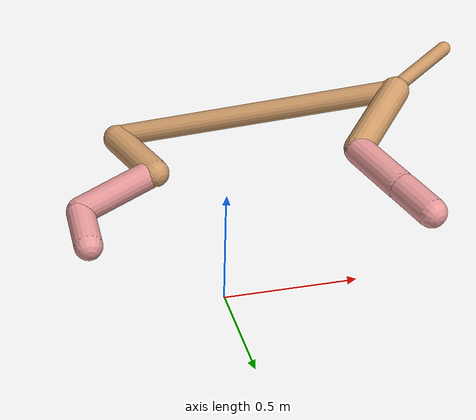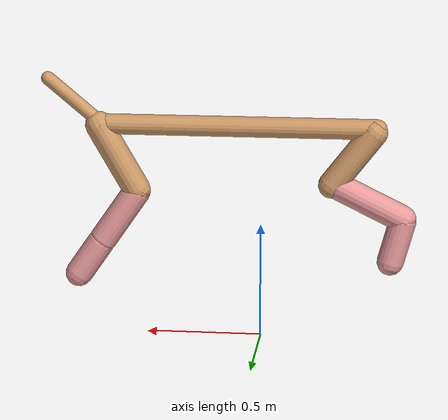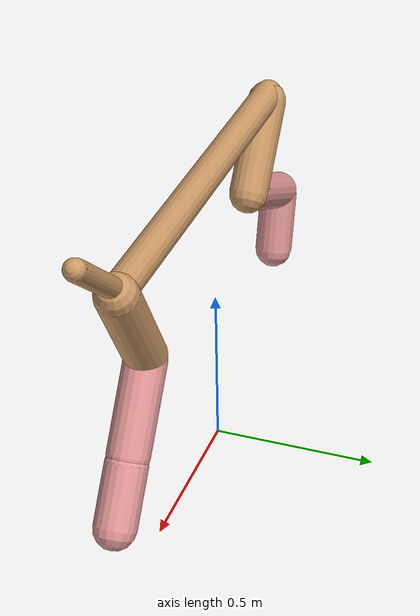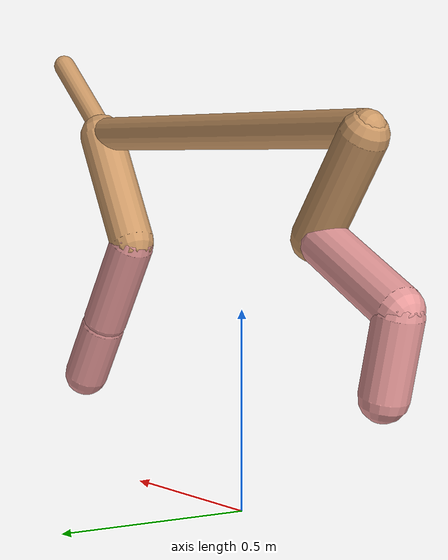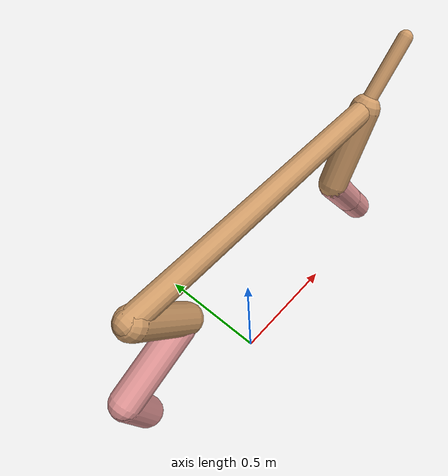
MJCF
<mujoco model="cheetah">
  <compiler angle="radian" coordinate="local" inertiafromgeom="true" settotalmass="14" />
  <default>
    <joint armature=".1" damping=".01" limited="true" solimplimit="0 .8 .03" solreflimit=".02 1" stiffness="8" />
    <geom conaffinity="0" condim="3" contype="1" friction="0.8 .1 .1" rgba="0.8 0.6 .4 1" solimp="0.0 0.8 0.01" solref="0.02 1" />
    <motor ctrllimited="true" ctrlrange="-1 1" />
  </default>
  <size nstack="300000" nuser_geom="1" />
  <option gravity="0 0 -9.81" timestep="0.01" />
  <worldbody>
    <body name="torso" pos="0.0 0.0 0.9371337987507634">
      <joint armature="0" axis="1 0 0" damping="0" limited="false" name="ignorex" pos="0 0 0" stiffness="0" type="slide" />
      <joint armature="0" axis="0 0 1" damping="0" limited="false" name="ignorez" pos="0 0 0" stiffness="0" type="slide" />
      <joint armature="0" axis="0 1 0" damping="0" limited="false" name="ignorey" pos="0 0 0" stiffness="0" type="hinge" />
      <geom fromto="-0.5 0.0 0.0 0.709385483145452 0.0 0.0" name="torso" size="0.044832172655047804" type="capsule" />
      <geom axisangle="0 1 0 .87" name="head" pos="0.809385483145452 0.0 0.1" size="0.029533276158994086 0.15" type="capsule" />

      <body name="bthigh" pos="-.5 0 0">
        <joint axis="0 1 0" damping="6" name="bthigh" pos="0 0 0" range="-.52 1.05" stiffness="240" type="hinge" />
        <geom axisangle="0 1 0 -3.8" name="bthigh" pos="0.10185933168292768 0.0 -0.132417131187806" size="0.059006460476513596 0.14804953069933768" type="capsule" />
        <body name="bshin" pos="0.16371866336585536 0.0 -0.25483426237561196">
          <joint axis="0 1 0" damping="4.5" name="bshin" pos="0 0 0" range="-.785 .785" stiffness="180" type="hinge" />
          <geom axisangle="0 1 0 -2.03" name="bshin" pos="-0.14282163776959653 0.0 -0.07141081888479826" rgba="0.9 0.6 0.6 1" size="0.059006460476513596 0.15315468693034934" type="capsule" />
          <body name="bfoot" pos="-0.28564327553919305 0.0 -0.14282163776959653">
            <joint axis="0 1 0" damping="3" name="bfoot" pos="0 0 0" range="-.4 .785" stiffness="120" type="hinge" />
            <geom axisangle="0 1 0 -.27" name="bfoot" pos="0.030584125069882142 0.0 -0.0988886710592856" rgba="0.9 0.6 0.6 1" size="0.059006460476513596 0.09597693714301893" type="capsule" />
            <inertial mass="10" />
          </body>
        </body>
      </body>
      <body name="fthigh" pos="0.709385483145452 0.0 0.0">
        <joint axis="0 1 0" damping="4.5" name="fthigh" pos="0 0 0" range="-1.5 0.8" stiffness="180" type="hinge" />
        <geom axisangle="0 1 0 .52" name="fthigh" pos="-0.08662289236221228 0.0 -0.14849638690664962" size="0.05984098796188205 0.16599037158352672" type="capsule" />
        <body name="fshin" pos="-0.17324578472442456 0.0 -0.29699277381329925">
          <joint axis="0 1 0" damping="3" name="fshin" pos="0 0 0" range="-1.2 1.1" stiffness="120" type="hinge" />
          <geom axisangle="0 1 0 -.6" name="fshin" pos="0.08039434886148004 0.0 -0.1113152522697416" rgba="0.9 0.6 0.6 1" size="0.05984098796188205 0.13229307810416416" type="capsule" />
          <body name="ffoot" pos="0.1607886977229601 0.0 -0.2226305045394832">
            <joint axis="0 1 0" damping="1.5" name="ffoot" pos="0 0 0" range="-3.1 -0.3" stiffness="60" type="hinge" />
            <geom axisangle="0 1 0 -.6" name="ffoot" pos="0.054389365196865894 0.0 -0.08460567919512474" rgba="0.9 0.6 0.6 1" size="0.05984098796188205 0.08736335346501407" type="capsule" />
            <inertial mass="10" />
          </body>
        </body>
      </body>
    </body>
  </worldbody>
  <actuator>
    <motor gear="120" joint="bthigh" name="bthigh" />
    <motor gear="90" joint="bshin" name="bshin" />
    <motor gear="60" joint="bfoot" name="bfoot" />
    <motor gear="120" joint="fthigh" name="fthigh" />
    <motor gear="60" joint="fshin" name="fshin" />
    <motor gear="30" joint="ffoot" name="ffoot" />
  </actuator>
</mujoco>
